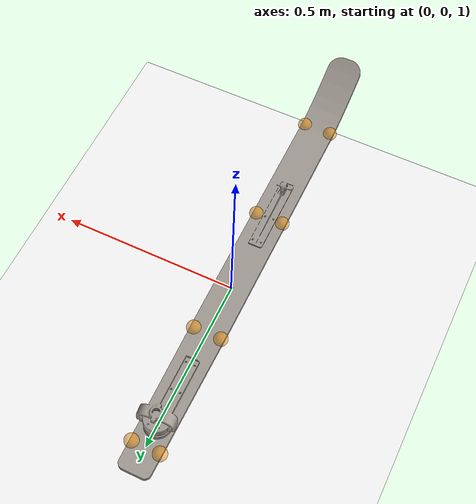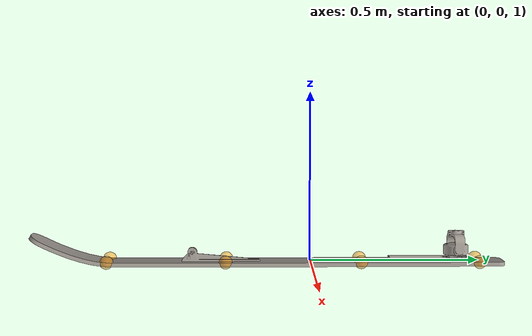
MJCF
<mujoco model="SkiDog">
  <compiler angle="radian" autolimits="true"/>
  <size njmax="500" nconmax="1000"/>
  <option timestep="0.002" iterations="50" tolerance="1e-10" solver="Newton" jacobian="dense" cone="elliptic" gravity="0 0 0" />
  <!-- gravity 1 0 -5 -->

  <default>
    <joint ref="0" armature="0.02"/>
    <geom condim="3" material="matgeom"/>
    <motor ctrlrange="-1.0 1.0" ctrllimited="true"/>
  </default>

  <visual>
    <map force="0.1" zfar="30"/>
    <rgba haze="0.15 0.25 0.35 1"/>
    <quality shadowsize="2048"/>
    <global offwidth="800" offheight="800"/>
  </visual>

  <asset>
    <mesh name="base" file="meshes/base2.STL"/>
    <mesh name="thigh" file="meshes/thigh.STL"/>
    <mesh name="thigh_r" file="meshes/thigh_right.STL"/>
    <mesh name="foot" file="meshes/foot.STL"/>
    <mesh name="midfoot" file="meshes/mdfoot.STL"/>
    <mesh name="THIGH_1" file="meshes/THIGH_1.STL"/>
    <mesh name="kuan" file="meshes/kuan.STL"/>
    <mesh name="jiao" file="meshes/jiaojie.STL"/>
    <mesh name="leg" file="meshes/leg.STL"/>
    <mesh name="skiboard" file="meshes/skiboard.STL"/>
    <texture type="skybox" builtin="gradient" rgb1="0.3 0.5 0.7" rgb2="0 0 0" width="512" height="512" />
    <texture name="texplane" type="2d" builtin="checker" rgb1="1 1 1 " rgb2="1 1 1 " width="512" height="512" mark="cross" markrgb=".8 .8 .8" />
    <texture name="texgeom" type="cube" builtin="flat" mark="cross" width="127" height="1278" rgb1="0.8 0.6 0.4" rgb2="0.8 0.6 0.4" markrgb="1 1 1" random="0.01"/>
    <material name="matplane" reflectance="0.3" texture="texplane" texrepeat="1 1" texuniform="true" rgba="0.5 0.5 0.5 1"/>
    <material name="matgeom" texture="texgeom" texuniform="true" rgba="0.8 0.6 .4 1"/>

  </asset>

  <worldbody>
    <geom name="floor" pos="0 0 0" size="0 0 0.25" type="plane" friction="1 0.005 0.0001" material="matplane" rgba="1 1 1 0.5" condim="1"/>
    <light directional="true" diffuse=".4 .4 .4" specular="0.1 0.1 0.1" pos="0 0 5.0" dir="0 0 -1" castshadow="false" />
    <light directional="true" diffuse=".6 .6 .6" specular="0.2 0.2 0.2" pos="0 0 4" dir="0 0 -1" />

    <body name="board_lb" pos="0 0 1" euler="0 -1.57 0">
      <geom name="board_lb" type="mesh" rgba="0.64706 0.61961 0.58824 1" mesh="skiboard" euler="-0 -1.57 0" condim="1"/>
      <site name="site1" pos="0 0 0" />
      <site name="b11" pos="0 0.5 0.04" size="0.02 0.02 0.02" type="sphere" rgba="1 0.6 0 0.5"/>
      <site name="b12" pos="0 0.5 -0.04" size="0.02 0.02 0.02" type="sphere" rgba="1 0.6 0 0.5"/>
      <site name="b13" pos="0 -0.6 0.04" size="0.02 0.02 0.02" type="sphere" rgba="1 0.6 0 0.5"/>
      <site name="b14" pos="0 -0.6 -0.04" size="0.02 0.02 0.02" type="sphere" rgba="1 0.6 0 0.5"/>
      <site name="b15" pos="0 0.15 0.04" size="0.02 0.02 0.02" type="sphere" rgba="1 0.6 0 0.5"/>
      <site name="b16" pos="0 0.15 -0.04" size="0.02 0.02 0.02" type="sphere" rgba="1 0.6 0 0.5"/>
      <site name="b17" pos="0 -0.25 0.04" size="0.02 0.02 0.02" type="sphere" rgba="1 0.6 0 0.5"/>
      <site name="b18" pos="0 -0.25 -0.04" size="0.02 0.02 0.02" type="sphere" rgba="1 0.6 0 0.5"/>
    </body>

  </worldbody>

</mujoco>
